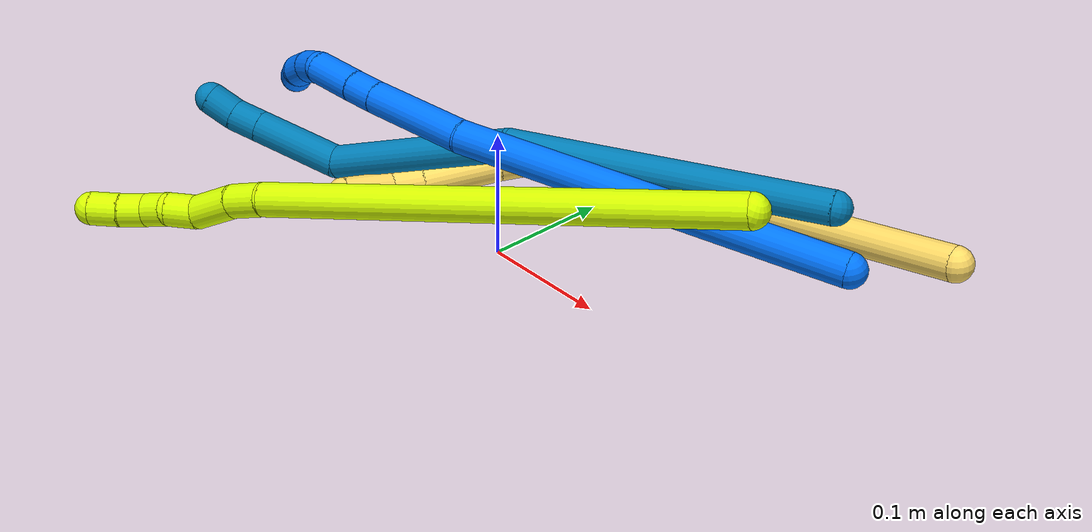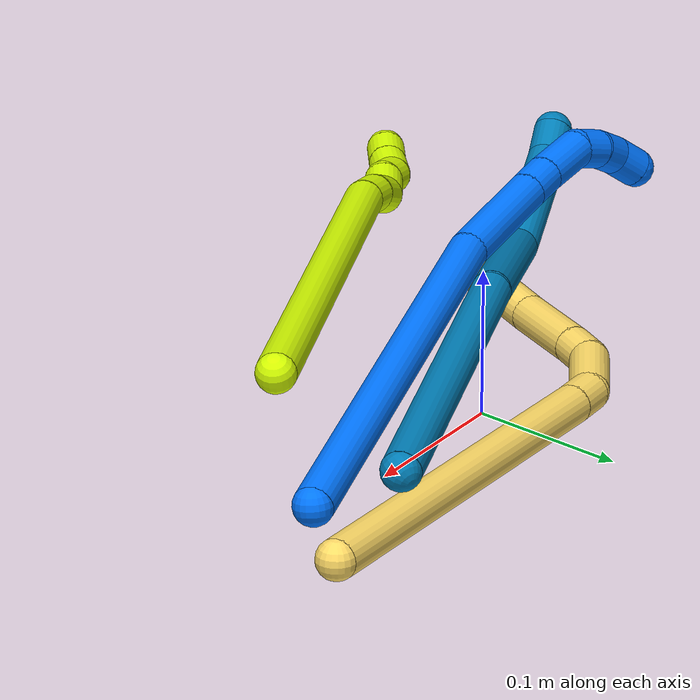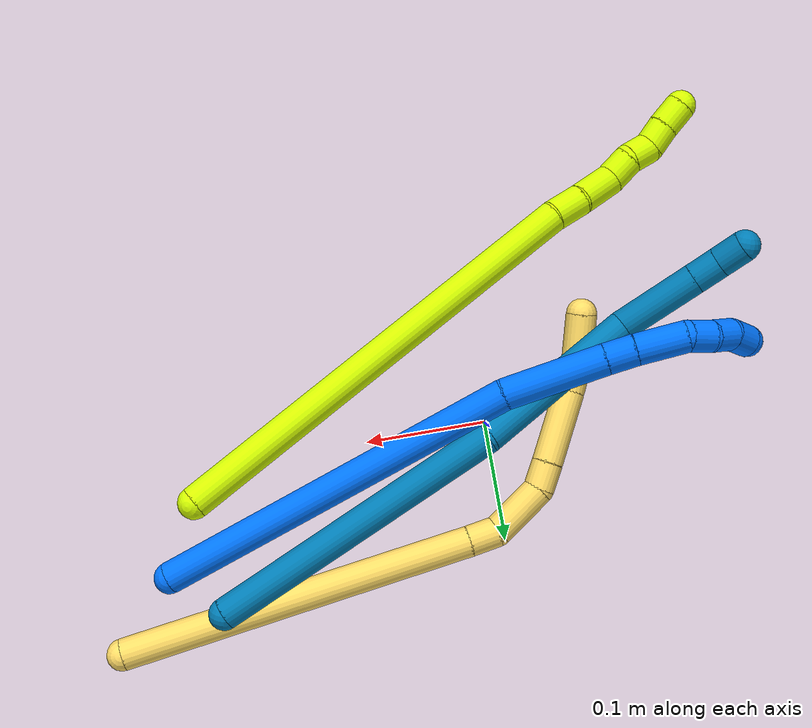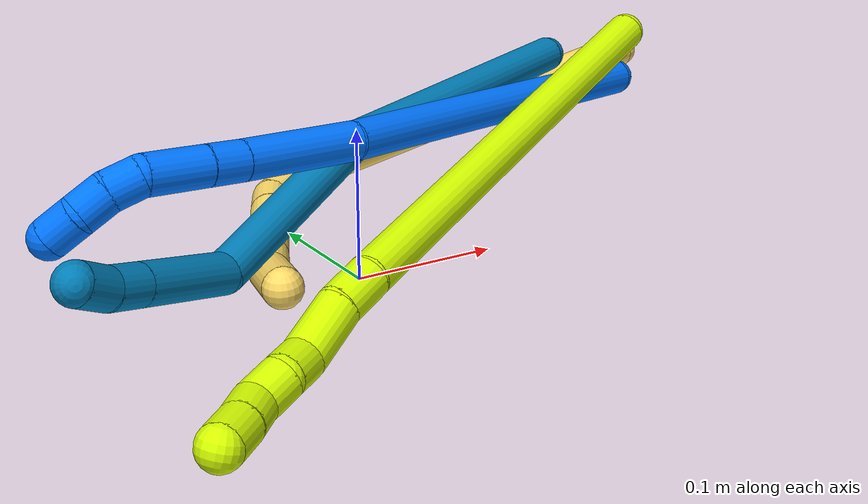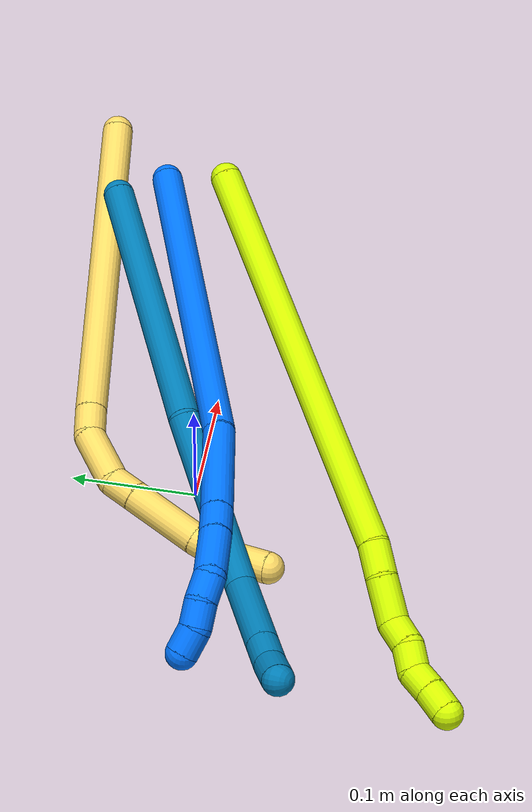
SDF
<sdf version="1.7">
 <world name="default">
  <model name="5">
   <static>0</static>
   <link name="5">
    <collision name="collision-cylinder-e_1_1_4">
     <pose>-0.140823 -0.003916 -0.005607 2.53198 -1.52227 -2.50363</pose>
     <geometry><cylinder><radius>0.0125</radius><length>0.281977</length></cylinder></geometry>
     <surface>
      <friction><ode><mu>1.16</mu><mu2>1.16</mu2><slip1>0</slip1><slip2>0</slip2></ode></friction>
      <contact><ode><kp>1e+06</kp><kd>1</kd><max_vel>0</max_vel><min_depth>0.001</min_depth></ode></contact>
     </surface>
    </collision>
    <visual name="visual-cylinder-e_1_1_4">
     <pose>-0.140823 -0.003916 -0.005607 2.53198 -1.52227 -2.50363</pose>
     <geometry><cylinder><radius>0.0125</radius><length>0.281977</length></cylinder></geometry>
     <material><ambient>1 0.858824 0.4 1</ambient></material>
    </visual>
    <collision name="collision-cylinder-e_2_4_5">
     <pose>-0.29371 -0.008555 -0.011435 1.86711 -1.50822 -1.80672</pose>
     <geometry><cylinder><radius>0.0125</radius><length>0.024176</length></cylinder></geometry>
     <surface>
      <friction><ode><mu>1.16</mu><mu2>1.16</mu2><slip1>0</slip1><slip2>0</slip2></ode></friction>
      <contact><ode><kp>1e+06</kp><kd>1</kd><max_vel>0</max_vel><min_depth>0.001</min_depth></ode></contact>
     </surface>
    </collision>
    <visual name="visual-cylinder-e_2_4_5">
     <pose>-0.29371 -0.008555 -0.011435 1.86711 -1.50822 -1.80672</pose>
     <geometry><cylinder><radius>0.0125</radius><length>0.024176</length></cylinder></geometry>
     <material><ambient>1 0.858824 0.4 1</ambient></material>
    </visual>
    <collision name="collision-cylinder-e_3_5_6">
     <pose>-0.326244 -0.020688 -0.010736 1.49036 -1.0609 -0.992039</pose>
     <geometry><cylinder><radius>0.0125</radius><length>0.046907</length></cylinder></geometry>
     <surface>
      <friction><ode><mu>1.16</mu><mu2>1.16</mu2><slip1>0</slip1><slip2>0</slip2></ode></friction>
      <contact><ode><kp>1e+06</kp><kd>1</kd><max_vel>0</max_vel><min_depth>0.001</min_depth></ode></contact>
     </surface>
    </collision>
    <visual name="visual-cylinder-e_3_5_6">
     <pose>-0.326244 -0.020688 -0.010736 1.49036 -1.0609 -0.992039</pose>
     <geometry><cylinder><radius>0.0125</radius><length>0.046907</length></cylinder></geometry>
     <material><ambient>1 0.858824 0.4 1</ambient></material>
    </visual>
    <collision name="collision-cylinder-e_4_6_7">
     <pose>-0.353086 -0.041312 -0.009551 1.54204 -0.604855 -0.588693</pose>
     <geometry><cylinder><radius>0.0125</radius><length>0.022412</length></cylinder></geometry>
     <surface>
      <friction><ode><mu>1.16</mu><mu2>1.16</mu2><slip1>0</slip1><slip2>0</slip2></ode></friction>
      <contact><ode><kp>1e+06</kp><kd>1</kd><max_vel>0</max_vel><min_depth>0.001</min_depth></ode></contact>
     </surface>
    </collision>
    <visual name="visual-cylinder-e_4_6_7">
     <pose>-0.353086 -0.041312 -0.009551 1.54204 -0.604855 -0.588693</pose>
     <geometry><cylinder><radius>0.0125</radius><length>0.022412</length></cylinder></geometry>
     <material><ambient>1 0.858824 0.4 1</ambient></material>
    </visual>
    <collision name="collision-cylinder-e_5_7_8">
     <pose>-0.376125 -0.075588 -0.009892 1.59497 -0.586716 -0.600234</pose>
     <geometry><cylinder><radius>0.0125</radius><length>0.060207</length></cylinder></geometry>
     <surface>
      <friction><ode><mu>1.16</mu><mu2>1.16</mu2><slip1>0</slip1><slip2>0</slip2></ode></friction>
      <contact><ode><kp>1e+06</kp><kd>1</kd><max_vel>0</max_vel><min_depth>0.001</min_depth></ode></contact>
     </surface>
    </collision>
    <visual name="visual-cylinder-e_5_7_8">
     <pose>-0.376125 -0.075588 -0.009892 1.59497 -0.586716 -0.600234</pose>
     <geometry><cylinder><radius>0.0125</radius><length>0.060207</length></cylinder></geometry>
     <material><ambient>1 0.858824 0.4 1</ambient></material>
    </visual>
    <collision name="collision-cylinder-e_6_8_9">
     <pose>-0.399141 -0.111321 -0.009688 1.49501 -0.535488 -0.498026</pose>
     <geometry><cylinder><radius>0.0125</radius><length>0.024889</length></cylinder></geometry>
     <surface>
      <friction><ode><mu>1.16</mu><mu2>1.16</mu2><slip1>0</slip1><slip2>0</slip2></ode></friction>
      <contact><ode><kp>1e+06</kp><kd>1</kd><max_vel>0</max_vel><min_depth>0.001</min_depth></ode></contact>
     </surface>
    </collision>
    <visual name="visual-cylinder-e_6_8_9">
     <pose>-0.399141 -0.111321 -0.009688 1.49501 -0.535488 -0.498026</pose>
     <geometry><cylinder><radius>0.0125</radius><length>0.024889</length></cylinder></geometry>
     <material><ambient>1 0.858824 0.4 1</ambient></material>
    </visual>
    <collision name="collision-cylinder-e_7_9_2">
     <pose>-0.412083 -0.140095 -0.004685 1.34318 -0.340965 -0.271981</pose>
     <geometry><cylinder><radius>0.0125</radius><length>0.039433</length></cylinder></geometry>
     <surface>
      <friction><ode><mu>1.16</mu><mu2>1.16</mu2><slip1>0</slip1><slip2>0</slip2></ode></friction>
      <contact><ode><kp>1e+06</kp><kd>1</kd><max_vel>0</max_vel><min_depth>0.001</min_depth></ode></contact>
     </surface>
    </collision>
    <visual name="visual-cylinder-e_7_9_2">
     <pose>-0.412083 -0.140095 -0.004685 1.34318 -0.340965 -0.271981</pose>
     <geometry><cylinder><radius>0.0125</radius><length>0.039433</length></cylinder></geometry>
     <material><ambient>1 0.858824 0.4 1</ambient></material>
    </visual>
    <collision name="collision-sphere-2">
     <pose>-0.418677 -0.158197 -0.000492 0 -0 0</pose>
     <geometry><sphere><radius>0.0125</radius></sphere></geometry>
     <surface>
      <friction><ode><mu>1.16</mu><mu2>1.16</mu2><slip1>0</slip1><slip2>0</slip2></ode></friction>
      <contact><ode><kp>1e+06</kp><kd>1</kd><max_vel>0</max_vel><min_depth>0.001</min_depth></ode></contact>
     </surface>
    </collision>
    <visual name="visual-sphere-2">
     <pose>-0.418677 -0.158197 -0.000492 0 -0 0</pose>
     <geometry><sphere><radius>0.0125</radius></sphere></geometry>
     <material><ambient>1 0.858824 0.4 1</ambient></material>
    </visual>
    <collision name="collision-sphere-9">
     <pose>-0.40549 -0.121993 -0.008878 0 -0 0</pose>
     <geometry><sphere><radius>0.0125</radius></sphere></geometry>
     <surface>
      <friction><ode><mu>1.16</mu><mu2>1.16</mu2><slip1>0</slip1><slip2>0</slip2></ode></friction>
      <contact><ode><kp>1e+06</kp><kd>1</kd><max_vel>0</max_vel><min_depth>0.001</min_depth></ode></contact>
     </surface>
    </collision>
    <visual name="visual-sphere-9">
     <pose>-0.40549 -0.121993 -0.008878 0 -0 0</pose>
     <geometry><sphere><radius>0.0125</radius></sphere></geometry>
     <material><ambient>1 0.858824 0.4 1</ambient></material>
    </visual>
    <collision name="collision-sphere-4">
     <pose>-0.281645 -0.007832 -0.011215 0 -0 0</pose>
     <geometry><sphere><radius>0.0125</radius></sphere></geometry>
     <surface>
      <friction><ode><mu>1.16</mu><mu2>1.16</mu2><slip1>0</slip1><slip2>0</slip2></ode></friction>
      <contact><ode><kp>1e+06</kp><kd>1</kd><max_vel>0</max_vel><min_depth>0.001</min_depth></ode></contact>
     </surface>
    </collision>
    <visual name="visual-sphere-4">
     <pose>-0.281645 -0.007832 -0.011215 0 -0 0</pose>
     <geometry><sphere><radius>0.0125</radius></sphere></geometry>
     <material><ambient>1 0.858824 0.4 1</ambient></material>
    </visual>
    <collision name="collision-sphere-1">
     <geometry><sphere><radius>0.0125</radius></sphere></geometry>
     <surface>
      <friction><ode><mu>1.16</mu><mu2>1.16</mu2><slip1>0</slip1><slip2>0</slip2></ode></friction>
      <contact><ode><kp>1e+06</kp><kd>1</kd><max_vel>0</max_vel><min_depth>0.001</min_depth></ode></contact>
     </surface>
    </collision>
    <visual name="visual-sphere-1">
     <geometry><sphere><radius>0.0125</radius></sphere></geometry>
     <material><ambient>1 0.858824 0.4 1</ambient></material>
    </visual>
    <collision name="collision-sphere-8">
     <pose>-0.392791 -0.100649 -0.010498 0 -0 0</pose>
     <geometry><sphere><radius>0.0125</radius></sphere></geometry>
     <surface>
      <friction><ode><mu>1.16</mu><mu2>1.16</mu2><slip1>0</slip1><slip2>0</slip2></ode></friction>
      <contact><ode><kp>1e+06</kp><kd>1</kd><max_vel>0</max_vel><min_depth>0.001</min_depth></ode></contact>
     </surface>
    </collision>
    <visual name="visual-sphere-8">
     <pose>-0.392791 -0.100649 -0.010498 0 -0 0</pose>
     <geometry><sphere><radius>0.0125</radius></sphere></geometry>
     <material><ambient>1 0.858824 0.4 1</ambient></material>
    </visual>
    <collision name="collision-sphere-5">
     <pose>-0.305774 -0.009278 -0.011656 0 -0 0</pose>
     <geometry><sphere><radius>0.0125</radius></sphere></geometry>
     <surface>
      <friction><ode><mu>1.16</mu><mu2>1.16</mu2><slip1>0</slip1><slip2>0</slip2></ode></friction>
      <contact><ode><kp>1e+06</kp><kd>1</kd><max_vel>0</max_vel><min_depth>0.001</min_depth></ode></contact>
     </surface>
    </collision>
    <visual name="visual-sphere-5">
     <pose>-0.305774 -0.009278 -0.011656 0 -0 0</pose>
     <geometry><sphere><radius>0.0125</radius></sphere></geometry>
     <material><ambient>1 0.858824 0.4 1</ambient></material>
    </visual>
    <collision name="collision-sphere-6">
     <pose>-0.346714 -0.032098 -0.009817 0 -0 0</pose>
     <geometry><sphere><radius>0.0125</radius></sphere></geometry>
     <surface>
      <friction><ode><mu>1.16</mu><mu2>1.16</mu2><slip1>0</slip1><slip2>0</slip2></ode></friction>
      <contact><ode><kp>1e+06</kp><kd>1</kd><max_vel>0</max_vel><min_depth>0.001</min_depth></ode></contact>
     </surface>
    </collision>
    <visual name="visual-sphere-6">
     <pose>-0.346714 -0.032098 -0.009817 0 -0 0</pose>
     <geometry><sphere><radius>0.0125</radius></sphere></geometry>
     <material><ambient>1 0.858824 0.4 1</ambient></material>
    </visual>
    <collision name="collision-sphere-7">
     <pose>-0.359458 -0.050526 -0.009286 0 -0 0</pose>
     <geometry><sphere><radius>0.0125</radius></sphere></geometry>
     <surface>
      <friction><ode><mu>1.16</mu><mu2>1.16</mu2><slip1>0</slip1><slip2>0</slip2></ode></friction>
      <contact><ode><kp>1e+06</kp><kd>1</kd><max_vel>0</max_vel><min_depth>0.001</min_depth></ode></contact>
     </surface>
    </collision>
    <visual name="visual-sphere-7">
     <pose>-0.359458 -0.050526 -0.009286 0 -0 0</pose>
     <geometry><sphere><radius>0.0125</radius></sphere></geometry>
     <material><ambient>1 0.858824 0.4 1</ambient></material>
    </visual>
    <inertial>
     <pose>-0.23771 -0.032106 -0.007193 0 -0 0</pose>
     <mass>0.5</mass>
     <inertia>
      <ixx>-0.000152</ixx>
      <ixy>0</ixy>
      <ixz>0</ixz>
      <iyy>0.001813</iyy>
      <iyz>0</iyz>
      <izz>0.001988</izz>
     </inertia>
    </inertial>
   </link>
   <pose>0.307553 0.12468 0.086512 0.059041 -0.087787 0.101187</pose>
  </model>
  <model name="9">
   <static>0</static>
   <link name="9">
    <collision name="collision-cylinder-e_1_1_4">
     <pose>-0.084709 -0.040467 -0.075541 2.6498 -0.779599 -2.04479</pose>
     <geometry><cylinder><radius>0.0125</radius><length>0.240995</length></cylinder></geometry>
     <surface>
      <friction><ode><mu>1.16</mu><mu2>1.16</mu2><slip1>0</slip1><slip2>0</slip2></ode></friction>
      <contact><ode><kp>1e+06</kp><kd>1</kd><max_vel>0</max_vel><min_depth>0.001</min_depth></ode></contact>
     </surface>
    </collision>
    <visual name="visual-cylinder-e_1_1_4">
     <pose>-0.084709 -0.040467 -0.075541 2.6498 -0.779599 -2.04479</pose>
     <geometry><cylinder><radius>0.0125</radius><length>0.240995</length></cylinder></geometry>
     <material><ambient>0 0.490196 0.709804 1</ambient></material>
    </visual>
    <collision name="collision-cylinder-e_2_4_5">
     <pose>-0.228084 -0.087936 -0.192692 2.97488 -0.947269 -2.81841</pose>
     <geometry><cylinder><radius>0.0125</radius><length>0.144527</length></cylinder></geometry>
     <surface>
      <friction><ode><mu>1.16</mu><mu2>1.16</mu2><slip1>0</slip1><slip2>0</slip2></ode></friction>
      <contact><ode><kp>1e+06</kp><kd>1</kd><max_vel>0</max_vel><min_depth>0.001</min_depth></ode></contact>
     </surface>
    </collision>
    <visual name="visual-cylinder-e_2_4_5">
     <pose>-0.228084 -0.087936 -0.192692 2.97488 -0.947269 -2.81841</pose>
     <geometry><cylinder><radius>0.0125</radius><length>0.144527</length></cylinder></geometry>
     <material><ambient>0 0.490196 0.709804 1</ambient></material>
    </visual>
    <collision name="collision-cylinder-e_3_5_6">
     <pose>-0.304288 -0.112063 -0.257942 2.51465 -0.541023 -1.41533</pose>
     <geometry><cylinder><radius>0.0125</radius><length>0.068109</length></cylinder></geometry>
     <surface>
      <friction><ode><mu>1.16</mu><mu2>1.16</mu2><slip1>0</slip1><slip2>0</slip2></ode></friction>
      <contact><ode><kp>1e+06</kp><kd>1</kd><max_vel>0</max_vel><min_depth>0.001</min_depth></ode></contact>
     </surface>
    </collision>
    <visual name="visual-cylinder-e_3_5_6">
     <pose>-0.304288 -0.112063 -0.257942 2.51465 -0.541023 -1.41533</pose>
     <geometry><cylinder><radius>0.0125</radius><length>0.068109</length></cylinder></geometry>
     <material><ambient>0 0.490196 0.709804 1</ambient></material>
    </visual>
    <collision name="collision-cylinder-e_4_6_7">
     <pose>-0.32772 -0.134991 -0.289609 2.51566 -0.536716 -1.40874</pose>
     <geometry><cylinder><radius>0.0125</radius><length>0.023052</length></cylinder></geometry>
     <surface>
      <friction><ode><mu>1.16</mu><mu2>1.16</mu2><slip1>0</slip1><slip2>0</slip2></ode></friction>
      <contact><ode><kp>1e+06</kp><kd>1</kd><max_vel>0</max_vel><min_depth>0.001</min_depth></ode></contact>
     </surface>
    </collision>
    <visual name="visual-cylinder-e_4_6_7">
     <pose>-0.32772 -0.134991 -0.289609 2.51566 -0.536716 -1.40874</pose>
     <geometry><cylinder><radius>0.0125</radius><length>0.023052</length></cylinder></geometry>
     <material><ambient>0 0.490196 0.709804 1</ambient></material>
    </visual>
    <collision name="collision-cylinder-e_5_7_2">
     <pose>-0.337385 -0.147854 -0.306113 2.44709 -0.329463 -0.861172</pose>
     <geometry><cylinder><radius>0.0125</radius><length>0.023316</length></cylinder></geometry>
     <surface>
      <friction><ode><mu>1.16</mu><mu2>1.16</mu2><slip1>0</slip1><slip2>0</slip2></ode></friction>
      <contact><ode><kp>1e+06</kp><kd>1</kd><max_vel>0</max_vel><min_depth>0.001</min_depth></ode></contact>
     </surface>
    </collision>
    <visual name="visual-cylinder-e_5_7_2">
     <pose>-0.337385 -0.147854 -0.306113 2.44709 -0.329463 -0.861172</pose>
     <geometry><cylinder><radius>0.0125</radius><length>0.023316</length></cylinder></geometry>
     <material><ambient>0 0.490196 0.709804 1</ambient></material>
    </visual>
    <collision name="collision-sphere-2">
     <pose>-0.341157 -0.154914 -0.314589 0 -0 0</pose>
     <geometry><sphere><radius>0.0125</radius></sphere></geometry>
     <surface>
      <friction><ode><mu>1.16</mu><mu2>1.16</mu2><slip1>0</slip1><slip2>0</slip2></ode></friction>
      <contact><ode><kp>1e+06</kp><kd>1</kd><max_vel>0</max_vel><min_depth>0.001</min_depth></ode></contact>
     </surface>
    </collision>
    <visual name="visual-sphere-2">
     <pose>-0.341157 -0.154914 -0.314589 0 -0 0</pose>
     <geometry><sphere><radius>0.0125</radius></sphere></geometry>
     <material><ambient>0 0.490196 0.709804 1</ambient></material>
    </visual>
    <collision name="collision-sphere-7">
     <pose>-0.333613 -0.140794 -0.297637 0 -0 0</pose>
     <geometry><sphere><radius>0.0125</radius></sphere></geometry>
     <surface>
      <friction><ode><mu>1.16</mu><mu2>1.16</mu2><slip1>0</slip1><slip2>0</slip2></ode></friction>
      <contact><ode><kp>1e+06</kp><kd>1</kd><max_vel>0</max_vel><min_depth>0.001</min_depth></ode></contact>
     </surface>
    </collision>
    <visual name="visual-sphere-7">
     <pose>-0.333613 -0.140794 -0.297637 0 -0 0</pose>
     <geometry><sphere><radius>0.0125</radius></sphere></geometry>
     <material><ambient>0 0.490196 0.709804 1</ambient></material>
    </visual>
    <collision name="collision-sphere-6">
     <pose>-0.321826 -0.129188 -0.281582 0 -0 0</pose>
     <geometry><sphere><radius>0.0125</radius></sphere></geometry>
     <surface>
      <friction><ode><mu>1.16</mu><mu2>1.16</mu2><slip1>0</slip1><slip2>0</slip2></ode></friction>
      <contact><ode><kp>1e+06</kp><kd>1</kd><max_vel>0</max_vel><min_depth>0.001</min_depth></ode></contact>
     </surface>
    </collision>
    <visual name="visual-sphere-6">
     <pose>-0.321826 -0.129188 -0.281582 0 -0 0</pose>
     <geometry><sphere><radius>0.0125</radius></sphere></geometry>
     <material><ambient>0 0.490196 0.709804 1</ambient></material>
    </visual>
    <collision name="collision-sphere-5">
     <pose>-0.286749 -0.094938 -0.234302 0 -0 0</pose>
     <geometry><sphere><radius>0.0125</radius></sphere></geometry>
     <surface>
      <friction><ode><mu>1.16</mu><mu2>1.16</mu2><slip1>0</slip1><slip2>0</slip2></ode></friction>
      <contact><ode><kp>1e+06</kp><kd>1</kd><max_vel>0</max_vel><min_depth>0.001</min_depth></ode></contact>
     </surface>
    </collision>
    <visual name="visual-sphere-5">
     <pose>-0.286749 -0.094938 -0.234302 0 -0 0</pose>
     <geometry><sphere><radius>0.0125</radius></sphere></geometry>
     <material><ambient>0 0.490196 0.709804 1</ambient></material>
    </visual>
    <collision name="collision-sphere-1">
     <geometry><sphere><radius>0.0125</radius></sphere></geometry>
     <surface>
      <friction><ode><mu>1.16</mu><mu2>1.16</mu2><slip1>0</slip1><slip2>0</slip2></ode></friction>
      <contact><ode><kp>1e+06</kp><kd>1</kd><max_vel>0</max_vel><min_depth>0.001</min_depth></ode></contact>
     </surface>
    </collision>
    <visual name="visual-sphere-1">
     <geometry><sphere><radius>0.0125</radius></sphere></geometry>
     <material><ambient>0 0.490196 0.709804 1</ambient></material>
    </visual>
    <collision name="collision-sphere-4">
     <pose>-0.169418 -0.080934 -0.151083 0 -0 0</pose>
     <geometry><sphere><radius>0.0125</radius></sphere></geometry>
     <surface>
      <friction><ode><mu>1.16</mu><mu2>1.16</mu2><slip1>0</slip1><slip2>0</slip2></ode></friction>
      <contact><ode><kp>1e+06</kp><kd>1</kd><max_vel>0</max_vel><min_depth>0.001</min_depth></ode></contact>
     </surface>
    </collision>
    <visual name="visual-sphere-4">
     <pose>-0.169418 -0.080934 -0.151083 0 -0 0</pose>
     <geometry><sphere><radius>0.0125</radius></sphere></geometry>
     <material><ambient>0 0.490196 0.709804 1</ambient></material>
    </visual>
    <inertial>
     <pose>-0.179049 -0.073306 -0.154872 0 -0 0</pose>
     <mass>0.5</mass>
     <inertia>
      <ixx>-0.001365</ixx>
      <ixy>0</ixy>
      <ixz>0</ixz>
      <iyy>0.000245</iyy>
      <iyz>0</iyz>
      <izz>0.001464</izz>
     </inertia>
    </inertial>
   </link>
   <pose>0.222701 0.105471 0.097962 -2.01742 -0.71894 -0.017535</pose>
  </model>
  <model name="14">
   <static>0</static>
   <link name="14">
    <collision name="collision-cylinder-e_1_1_4">
     <pose>-0.143212 0.002237 0.033572 -0.06653 -1.34004 0.052718</pose>
     <geometry><cylinder><radius>0.0125</radius><length>0.294223</length></cylinder></geometry>
     <surface>
      <friction><ode><mu>1.16</mu><mu2>1.16</mu2><slip1>0</slip1><slip2>0</slip2></ode></friction>
      <contact><ode><kp>1e+06</kp><kd>1</kd><max_vel>0</max_vel><min_depth>0.001</min_depth></ode></contact>
     </surface>
    </collision>
    <visual name="visual-cylinder-e_1_1_4">
     <pose>-0.143212 0.002237 0.033572 -0.06653 -1.34004 0.052718</pose>
     <geometry><cylinder><radius>0.0125</radius><length>0.294223</length></cylinder></geometry>
     <material><ambient>0 0.462745 1 1</ambient></material>
    </visual>
    <collision name="collision-cylinder-e_2_4_5">
     <pose>-0.325656 0.011798 0.07509 -0.744698 -1.30201 0.578379</pose>
     <geometry><cylinder><radius>0.0125</radius><length>0.081387</length></cylinder></geometry>
     <surface>
      <friction><ode><mu>1.16</mu><mu2>1.16</mu2><slip1>0</slip1><slip2>0</slip2></ode></friction>
      <contact><ode><kp>1e+06</kp><kd>1</kd><max_vel>0</max_vel><min_depth>0.001</min_depth></ode></contact>
     </surface>
    </collision>
    <visual name="visual-cylinder-e_2_4_5">
     <pose>-0.325656 0.011798 0.07509 -0.744698 -1.30201 0.578379</pose>
     <geometry><cylinder><radius>0.0125</radius><length>0.081387</length></cylinder></geometry>
     <material><ambient>0 0.462745 1 1</ambient></material>
    </visual>
    <collision name="collision-cylinder-e_3_5_6">
     <pose>-0.376056 0.021541 0.085454 -0.785467 -1.27364 0.594611</pose>
     <geometry><cylinder><radius>0.0125</radius><length>0.023359</length></cylinder></geometry>
     <surface>
      <friction><ode><mu>1.16</mu><mu2>1.16</mu2><slip1>0</slip1><slip2>0</slip2></ode></friction>
      <contact><ode><kp>1e+06</kp><kd>1</kd><max_vel>0</max_vel><min_depth>0.001</min_depth></ode></contact>
     </surface>
    </collision>
    <visual name="visual-cylinder-e_3_5_6">
     <pose>-0.376056 0.021541 0.085454 -0.785467 -1.27364 0.594611</pose>
     <geometry><cylinder><radius>0.0125</radius><length>0.023359</length></cylinder></geometry>
     <material><ambient>0 0.462745 1 1</ambient></material>
    </visual>
    <collision name="collision-cylinder-e_4_6_7">
     <pose>-0.406181 0.029028 0.091447 -0.956564 -1.25455 0.719004</pose>
     <geometry><cylinder><radius>0.0125</radius><length>0.039892</length></cylinder></geometry>
     <surface>
      <friction><ode><mu>1.16</mu><mu2>1.16</mu2><slip1>0</slip1><slip2>0</slip2></ode></friction>
      <contact><ode><kp>1e+06</kp><kd>1</kd><max_vel>0</max_vel><min_depth>0.001</min_depth></ode></contact>
     </surface>
    </collision>
    <visual name="visual-cylinder-e_4_6_7">
     <pose>-0.406181 0.029028 0.091447 -0.956564 -1.25455 0.719004</pose>
     <geometry><cylinder><radius>0.0125</radius><length>0.039892</length></cylinder></geometry>
     <material><ambient>0 0.462745 1 1</ambient></material>
    </visual>
    <collision name="collision-cylinder-e_5_7_8">
     <pose>-0.434163 0.038237 0.092411 -2.13359 -1.07396 1.64719</pose>
     <geometry><cylinder><radius>0.0125</radius><length>0.020534</length></cylinder></geometry>
     <surface>
      <friction><ode><mu>1.16</mu><mu2>1.16</mu2><slip1>0</slip1><slip2>0</slip2></ode></friction>
      <contact><ode><kp>1e+06</kp><kd>1</kd><max_vel>0</max_vel><min_depth>0.001</min_depth></ode></contact>
     </surface>
    </collision>
    <visual name="visual-cylinder-e_5_7_8">
     <pose>-0.434163 0.038237 0.092411 -2.13359 -1.07396 1.64719</pose>
     <geometry><cylinder><radius>0.0125</radius><length>0.020534</length></cylinder></geometry>
     <material><ambient>0 0.462745 1 1</ambient></material>
    </visual>
    <collision name="collision-cylinder-e_6_8_9">
     <pose>-0.451849 0.045011 0.085479 -2.59395 -1.04193 2.23123</pose>
     <geometry><cylinder><radius>0.0125</radius><length>0.020061</length></cylinder></geometry>
     <surface>
      <friction><ode><mu>1.16</mu><mu2>1.16</mu2><slip1>0</slip1><slip2>0</slip2></ode></friction>
      <contact><ode><kp>1e+06</kp><kd>1</kd><max_vel>0</max_vel><min_depth>0.001</min_depth></ode></contact>
     </surface>
    </collision>
    <visual name="visual-cylinder-e_6_8_9">
     <pose>-0.451849 0.045011 0.085479 -2.59395 -1.04193 2.23123</pose>
     <geometry><cylinder><radius>0.0125</radius><length>0.020061</length></cylinder></geometry>
     <material><ambient>0 0.462745 1 1</ambient></material>
    </visual>
    <collision name="collision-cylinder-e_7_9_2">
     <pose>-0.467227 0.05257 0.075147 -2.45525 -0.712856 1.61197</pose>
     <geometry><cylinder><radius>0.0125</radius><length>0.020545</length></cylinder></geometry>
     <surface>
      <friction><ode><mu>1.16</mu><mu2>1.16</mu2><slip1>0</slip1><slip2>0</slip2></ode></friction>
      <contact><ode><kp>1e+06</kp><kd>1</kd><max_vel>0</max_vel><min_depth>0.001</min_depth></ode></contact>
     </surface>
    </collision>
    <visual name="visual-cylinder-e_7_9_2">
     <pose>-0.467227 0.05257 0.075147 -2.45525 -0.712856 1.61197</pose>
     <geometry><cylinder><radius>0.0125</radius><length>0.020545</length></cylinder></geometry>
     <material><ambient>0 0.462745 1 1</ambient></material>
    </visual>
    <collision name="collision-sphere-2">
     <pose>-0.473945 0.057495 0.069136 0 -0 0</pose>
     <geometry><sphere><radius>0.0125</radius></sphere></geometry>
     <surface>
      <friction><ode><mu>1.16</mu><mu2>1.16</mu2><slip1>0</slip1><slip2>0</slip2></ode></friction>
      <contact><ode><kp>1e+06</kp><kd>1</kd><max_vel>0</max_vel><min_depth>0.001</min_depth></ode></contact>
     </surface>
    </collision>
    <visual name="visual-sphere-2">
     <pose>-0.473945 0.057495 0.069136 0 -0 0</pose>
     <geometry><sphere><radius>0.0125</radius></sphere></geometry>
     <material><ambient>0 0.462745 1 1</ambient></material>
    </visual>
    <collision name="collision-sphere-9">
     <pose>-0.460509 0.047646 0.081158 0 -0 0</pose>
     <geometry><sphere><radius>0.0125</radius></sphere></geometry>
     <surface>
      <friction><ode><mu>1.16</mu><mu2>1.16</mu2><slip1>0</slip1><slip2>0</slip2></ode></friction>
      <contact><ode><kp>1e+06</kp><kd>1</kd><max_vel>0</max_vel><min_depth>0.001</min_depth></ode></contact>
     </surface>
    </collision>
    <visual name="visual-sphere-9">
     <pose>-0.460509 0.047646 0.081158 0 -0 0</pose>
     <geometry><sphere><radius>0.0125</radius></sphere></geometry>
     <material><ambient>0 0.462745 1 1</ambient></material>
    </visual>
    <collision name="collision-sphere-4">
     <pose>-0.286424 0.004474 0.067144 0 -0 0</pose>
     <geometry><sphere><radius>0.0125</radius></sphere></geometry>
     <surface>
      <friction><ode><mu>1.16</mu><mu2>1.16</mu2><slip1>0</slip1><slip2>0</slip2></ode></friction>
      <contact><ode><kp>1e+06</kp><kd>1</kd><max_vel>0</max_vel><min_depth>0.001</min_depth></ode></contact>
     </surface>
    </collision>
    <visual name="visual-sphere-4">
     <pose>-0.286424 0.004474 0.067144 0 -0 0</pose>
     <geometry><sphere><radius>0.0125</radius></sphere></geometry>
     <material><ambient>0 0.462745 1 1</ambient></material>
    </visual>
    <collision name="collision-sphere-1">
     <geometry><sphere><radius>0.0125</radius></sphere></geometry>
     <surface>
      <friction><ode><mu>1.16</mu><mu2>1.16</mu2><slip1>0</slip1><slip2>0</slip2></ode></friction>
      <contact><ode><kp>1e+06</kp><kd>1</kd><max_vel>0</max_vel><min_depth>0.001</min_depth></ode></contact>
     </surface>
    </collision>
    <visual name="visual-sphere-1">
     <geometry><sphere><radius>0.0125</radius></sphere></geometry>
     <material><ambient>0 0.462745 1 1</ambient></material>
    </visual>
    <collision name="collision-sphere-8">
     <pose>-0.443189 0.042375 0.0898 0 -0 0</pose>
     <geometry><sphere><radius>0.0125</radius></sphere></geometry>
     <surface>
      <friction><ode><mu>1.16</mu><mu2>1.16</mu2><slip1>0</slip1><slip2>0</slip2></ode></friction>
      <contact><ode><kp>1e+06</kp><kd>1</kd><max_vel>0</max_vel><min_depth>0.001</min_depth></ode></contact>
     </surface>
    </collision>
    <visual name="visual-sphere-8">
     <pose>-0.443189 0.042375 0.0898 0 -0 0</pose>
     <geometry><sphere><radius>0.0125</radius></sphere></geometry>
     <material><ambient>0 0.462745 1 1</ambient></material>
    </visual>
    <collision name="collision-sphere-5">
     <pose>-0.364888 0.019122 0.083036 0 -0 0</pose>
     <geometry><sphere><radius>0.0125</radius></sphere></geometry>
     <surface>
      <friction><ode><mu>1.16</mu><mu2>1.16</mu2><slip1>0</slip1><slip2>0</slip2></ode></friction>
      <contact><ode><kp>1e+06</kp><kd>1</kd><max_vel>0</max_vel><min_depth>0.001</min_depth></ode></contact>
     </surface>
    </collision>
    <visual name="visual-sphere-5">
     <pose>-0.364888 0.019122 0.083036 0 -0 0</pose>
     <geometry><sphere><radius>0.0125</radius></sphere></geometry>
     <material><ambient>0 0.462745 1 1</ambient></material>
    </visual>
    <collision name="collision-sphere-6">
     <pose>-0.387224 0.023959 0.087872 0 -0 0</pose>
     <geometry><sphere><radius>0.0125</radius></sphere></geometry>
     <surface>
      <friction><ode><mu>1.16</mu><mu2>1.16</mu2><slip1>0</slip1><slip2>0</slip2></ode></friction>
      <contact><ode><kp>1e+06</kp><kd>1</kd><max_vel>0</max_vel><min_depth>0.001</min_depth></ode></contact>
     </surface>
    </collision>
    <visual name="visual-sphere-6">
     <pose>-0.387224 0.023959 0.087872 0 -0 0</pose>
     <geometry><sphere><radius>0.0125</radius></sphere></geometry>
     <material><ambient>0 0.462745 1 1</ambient></material>
    </visual>
    <collision name="collision-sphere-7">
     <pose>-0.425137 0.034098 0.095022 0 -0 0</pose>
     <geometry><sphere><radius>0.0125</radius></sphere></geometry>
     <surface>
      <friction><ode><mu>1.16</mu><mu2>1.16</mu2><slip1>0</slip1><slip2>0</slip2></ode></friction>
      <contact><ode><kp>1e+06</kp><kd>1</kd><max_vel>0</max_vel><min_depth>0.001</min_depth></ode></contact>
     </surface>
    </collision>
    <visual name="visual-sphere-7">
     <pose>-0.425137 0.034098 0.095022 0 -0 0</pose>
     <geometry><sphere><radius>0.0125</radius></sphere></geometry>
     <material><ambient>0 0.462745 1 1</ambient></material>
    </visual>
    <inertial>
     <pose>-0.242413 0.012095 0.053578 0 -0 0</pose>
     <mass>0.5</mass>
     <inertia>
      <ixx>0.000499</ixx>
      <ixy>0</ixy>
      <ixz>0</ixz>
      <iyy>0.002233</iyy>
      <iyz>0</iyz>
      <izz>0.002096</izz>
     </inertia>
    </inertial>
   </link>
   <pose>0.262792 0.073119 0.08193 0.137916 -0.164395 0.315534</pose>
  </model>
  <model name="15">
   <static>0</static>
   <link name="15">
    <collision name="collision-cylinder-e_1_1_4">
     <pose>-0.073947 -0.135337 0.0843 1.01372 -0.434253 -0.243763</pose>
     <geometry><cylinder><radius>0.0125</radius><length>0.351516</length></cylinder></geometry>
     <surface>
      <friction><ode><mu>1.16</mu><mu2>1.16</mu2><slip1>0</slip1><slip2>0</slip2></ode></friction>
      <contact><ode><kp>1e+06</kp><kd>1</kd><max_vel>0</max_vel><min_depth>0.001</min_depth></ode></contact>
     </surface>
    </collision>
    <visual name="visual-cylinder-e_1_1_4">
     <pose>-0.073947 -0.135337 0.0843 1.01372 -0.434253 -0.243763</pose>
     <geometry><cylinder><radius>0.0125</radius><length>0.351516</length></cylinder></geometry>
     <material><ambient>0.835294 1 0 1</ambient></material>
    </visual>
    <collision name="collision-cylinder-e_2_4_5">
     <pose>-0.151839 -0.280657 0.176583 0.896225 -0.29937 -0.144747</pose>
     <geometry><cylinder><radius>0.0125</radius><length>0.026755</length></cylinder></geometry>
     <surface>
      <friction><ode><mu>1.16</mu><mu2>1.16</mu2><slip1>0</slip1><slip2>0</slip2></ode></friction>
      <contact><ode><kp>1e+06</kp><kd>1</kd><max_vel>0</max_vel><min_depth>0.001</min_depth></ode></contact>
     </surface>
    </collision>
    <visual name="visual-cylinder-e_2_4_5">
     <pose>-0.151839 -0.280657 0.176583 0.896225 -0.29937 -0.144747</pose>
     <geometry><cylinder><radius>0.0125</radius><length>0.026755</length></cylinder></geometry>
     <material><ambient>0.835294 1 0 1</ambient></material>
    </visual>
    <collision name="collision-cylinder-e_3_5_6">
     <pose>-0.161228 -0.301732 0.197579 0.705963 -0.308232 -0.114339</pose>
     <geometry><cylinder><radius>0.0125</radius><length>0.035888</length></cylinder></geometry>
     <surface>
      <friction><ode><mu>1.16</mu><mu2>1.16</mu2><slip1>0</slip1><slip2>0</slip2></ode></friction>
      <contact><ode><kp>1e+06</kp><kd>1</kd><max_vel>0</max_vel><min_depth>0.001</min_depth></ode></contact>
     </surface>
    </collision>
    <visual name="visual-cylinder-e_3_5_6">
     <pose>-0.161228 -0.301732 0.197579 0.705963 -0.308232 -0.114339</pose>
     <geometry><cylinder><radius>0.0125</radius><length>0.035888</length></cylinder></geometry>
     <material><ambient>0.835294 1 0 1</ambient></material>
    </visual>
    <collision name="collision-cylinder-e_4_6_7">
     <pose>-0.173028 -0.321444 0.214204 1.17379 -0.597255 -0.40388</pose>
     <geometry><cylinder><radius>0.0125</radius><length>0.022603</length></cylinder></geometry>
     <surface>
      <friction><ode><mu>1.16</mu><mu2>1.16</mu2><slip1>0</slip1><slip2>0</slip2></ode></friction>
      <contact><ode><kp>1e+06</kp><kd>1</kd><max_vel>0</max_vel><min_depth>0.001</min_depth></ode></contact>
     </surface>
    </collision>
    <visual name="visual-cylinder-e_4_6_7">
     <pose>-0.173028 -0.321444 0.214204 1.17379 -0.597255 -0.40388</pose>
     <geometry><cylinder><radius>0.0125</radius><length>0.022603</length></cylinder></geometry>
     <material><ambient>0.835294 1 0 1</ambient></material>
    </visual>
    <collision name="collision-cylinder-e_5_7_8">
     <pose>-0.182246 -0.337926 0.223936 0.909544 -0.279699 -0.137442</pose>
     <geometry><cylinder><radius>0.0125</radius><length>0.020733</length></cylinder></geometry>
     <surface>
      <friction><ode><mu>1.16</mu><mu2>1.16</mu2><slip1>0</slip1><slip2>0</slip2></ode></friction>
      <contact><ode><kp>1e+06</kp><kd>1</kd><max_vel>0</max_vel><min_depth>0.001</min_depth></ode></contact>
     </surface>
    </collision>
    <visual name="visual-cylinder-e_5_7_8">
     <pose>-0.182246 -0.337926 0.223936 0.909544 -0.279699 -0.137442</pose>
     <geometry><cylinder><radius>0.0125</radius><length>0.020733</length></cylinder></geometry>
     <material><ambient>0.835294 1 0 1</ambient></material>
    </visual>
    <collision name="collision-cylinder-e_6_8_9">
     <pose>-0.191926 -0.352548 0.233405 1.11066 -0.734983 -0.468944</pose>
     <geometry><cylinder><radius>0.0125</radius><length>0.020337</length></cylinder></geometry>
     <surface>
      <friction><ode><mu>1.16</mu><mu2>1.16</mu2><slip1>0</slip1><slip2>0</slip2></ode></friction>
      <contact><ode><kp>1e+06</kp><kd>1</kd><max_vel>0</max_vel><min_depth>0.001</min_depth></ode></contact>
     </surface>
    </collision>
    <visual name="visual-cylinder-e_6_8_9">
     <pose>-0.191926 -0.352548 0.233405 1.11066 -0.734983 -0.468944</pose>
     <geometry><cylinder><radius>0.0125</radius><length>0.020337</length></cylinder></geometry>
     <material><ambient>0.835294 1 0 1</ambient></material>
    </visual>
    <collision name="collision-cylinder-e_7_9_2">
     <pose>-0.205521 -0.367334 0.240292 1.15569 -0.657694 -0.437901</pose>
     <geometry><cylinder><radius>0.0125</radius><length>0.022168</length></cylinder></geometry>
     <surface>
      <friction><ode><mu>1.16</mu><mu2>1.16</mu2><slip1>0</slip1><slip2>0</slip2></ode></friction>
      <contact><ode><kp>1e+06</kp><kd>1</kd><max_vel>0</max_vel><min_depth>0.001</min_depth></ode></contact>
     </surface>
    </collision>
    <visual name="visual-cylinder-e_7_9_2">
     <pose>-0.205521 -0.367334 0.240292 1.15569 -0.657694 -0.437901</pose>
     <geometry><cylinder><radius>0.0125</radius><length>0.022168</length></cylinder></geometry>
     <material><ambient>0.835294 1 0 1</ambient></material>
    </visual>
    <collision name="collision-sphere-2">
     <pose>-0.212296 -0.375361 0.24383 0 -0 0</pose>
     <geometry><sphere><radius>0.0125</radius></sphere></geometry>
     <surface>
      <friction><ode><mu>1.16</mu><mu2>1.16</mu2><slip1>0</slip1><slip2>0</slip2></ode></friction>
      <contact><ode><kp>1e+06</kp><kd>1</kd><max_vel>0</max_vel><min_depth>0.001</min_depth></ode></contact>
     </surface>
    </collision>
    <visual name="visual-sphere-2">
     <pose>-0.212296 -0.375361 0.24383 0 -0 0</pose>
     <geometry><sphere><radius>0.0125</radius></sphere></geometry>
     <material><ambient>0.835294 1 0 1</ambient></material>
    </visual>
    <collision name="collision-sphere-9">
     <pose>-0.198745 -0.359307 0.236754 0 -0 0</pose>
     <geometry><sphere><radius>0.0125</radius></sphere></geometry>
     <surface>
      <friction><ode><mu>1.16</mu><mu2>1.16</mu2><slip1>0</slip1><slip2>0</slip2></ode></friction>
      <contact><ode><kp>1e+06</kp><kd>1</kd><max_vel>0</max_vel><min_depth>0.001</min_depth></ode></contact>
     </surface>
    </collision>
    <visual name="visual-sphere-9">
     <pose>-0.198745 -0.359307 0.236754 0 -0 0</pose>
     <geometry><sphere><radius>0.0125</radius></sphere></geometry>
     <material><ambient>0.835294 1 0 1</ambient></material>
    </visual>
    <collision name="collision-sphere-4">
     <pose>-0.147894 -0.270674 0.1686 0 -0 0</pose>
     <geometry><sphere><radius>0.0125</radius></sphere></geometry>
     <surface>
      <friction><ode><mu>1.16</mu><mu2>1.16</mu2><slip1>0</slip1><slip2>0</slip2></ode></friction>
      <contact><ode><kp>1e+06</kp><kd>1</kd><max_vel>0</max_vel><min_depth>0.001</min_depth></ode></contact>
     </surface>
    </collision>
    <visual name="visual-sphere-4">
     <pose>-0.147894 -0.270674 0.1686 0 -0 0</pose>
     <geometry><sphere><radius>0.0125</radius></sphere></geometry>
     <material><ambient>0.835294 1 0 1</ambient></material>
    </visual>
    <collision name="collision-sphere-1">
     <geometry><sphere><radius>0.0125</radius></sphere></geometry>
     <surface>
      <friction><ode><mu>1.16</mu><mu2>1.16</mu2><slip1>0</slip1><slip2>0</slip2></ode></friction>
      <contact><ode><kp>1e+06</kp><kd>1</kd><max_vel>0</max_vel><min_depth>0.001</min_depth></ode></contact>
     </surface>
    </collision>
    <visual name="visual-sphere-1">
     <geometry><sphere><radius>0.0125</radius></sphere></geometry>
     <material><ambient>0.835294 1 0 1</ambient></material>
    </visual>
    <collision name="collision-sphere-8">
     <pose>-0.185107 -0.345789 0.230055 0 -0 0</pose>
     <geometry><sphere><radius>0.0125</radius></sphere></geometry>
     <surface>
      <friction><ode><mu>1.16</mu><mu2>1.16</mu2><slip1>0</slip1><slip2>0</slip2></ode></friction>
      <contact><ode><kp>1e+06</kp><kd>1</kd><max_vel>0</max_vel><min_depth>0.001</min_depth></ode></contact>
     </surface>
    </collision>
    <visual name="visual-sphere-8">
     <pose>-0.185107 -0.345789 0.230055 0 -0 0</pose>
     <geometry><sphere><radius>0.0125</radius></sphere></geometry>
     <material><ambient>0.835294 1 0 1</ambient></material>
    </visual>
    <collision name="collision-sphere-5">
     <pose>-0.155785 -0.290639 0.184567 0 -0 0</pose>
     <geometry><sphere><radius>0.0125</radius></sphere></geometry>
     <surface>
      <friction><ode><mu>1.16</mu><mu2>1.16</mu2><slip1>0</slip1><slip2>0</slip2></ode></friction>
      <contact><ode><kp>1e+06</kp><kd>1</kd><max_vel>0</max_vel><min_depth>0.001</min_depth></ode></contact>
     </surface>
    </collision>
    <visual name="visual-sphere-5">
     <pose>-0.155785 -0.290639 0.184567 0 -0 0</pose>
     <geometry><sphere><radius>0.0125</radius></sphere></geometry>
     <material><ambient>0.835294 1 0 1</ambient></material>
    </visual>
    <collision name="collision-sphere-6">
     <pose>-0.166672 -0.312825 0.21059 0 -0 0</pose>
     <geometry><sphere><radius>0.0125</radius></sphere></geometry>
     <surface>
      <friction><ode><mu>1.16</mu><mu2>1.16</mu2><slip1>0</slip1><slip2>0</slip2></ode></friction>
      <contact><ode><kp>1e+06</kp><kd>1</kd><max_vel>0</max_vel><min_depth>0.001</min_depth></ode></contact>
     </surface>
    </collision>
    <visual name="visual-sphere-6">
     <pose>-0.166672 -0.312825 0.21059 0 -0 0</pose>
     <geometry><sphere><radius>0.0125</radius></sphere></geometry>
     <material><ambient>0.835294 1 0 1</ambient></material>
    </visual>
    <collision name="collision-sphere-7">
     <pose>-0.179384 -0.330062 0.217817 0 -0 0</pose>
     <geometry><sphere><radius>0.0125</radius></sphere></geometry>
     <surface>
      <friction><ode><mu>1.16</mu><mu2>1.16</mu2><slip1>0</slip1><slip2>0</slip2></ode></friction>
      <contact><ode><kp>1e+06</kp><kd>1</kd><max_vel>0</max_vel><min_depth>0.001</min_depth></ode></contact>
     </surface>
    </collision>
    <visual name="visual-sphere-7">
     <pose>-0.179384 -0.330062 0.217817 0 -0 0</pose>
     <geometry><sphere><radius>0.0125</radius></sphere></geometry>
     <material><ambient>0.835294 1 0 1</ambient></material>
    </visual>
    <inertial>
     <pose>-0.103982 -0.190991 0.122012 0 -0 0</pose>
     <mass>0.5</mass>
     <inertia>
      <ixx>0.002396</ixx>
      <ixy>0</ixy>
      <ixz>0</ixz>
      <iyy>0.00136</iyy>
      <iyz>0</iyz>
      <izz>0.004361</izz>
     </inertia>
    </inertial>
   </link>
   <pose>0.224114 0.015864 0.132101 -2.82455 0.098911 1.61613</pose>
  </model>
 </world>
</sdf>
